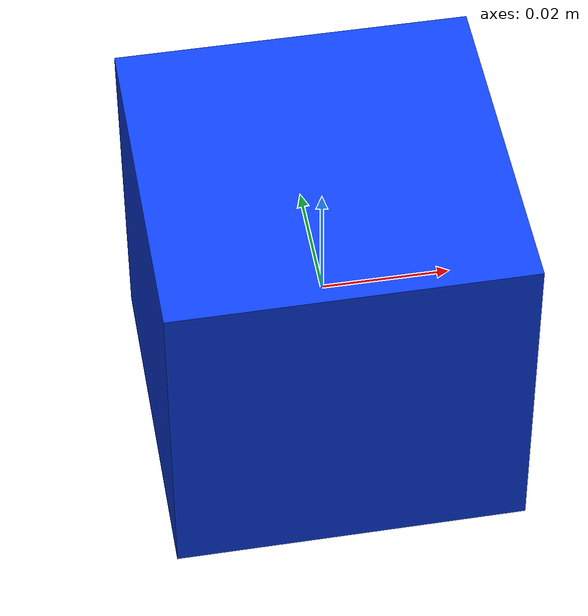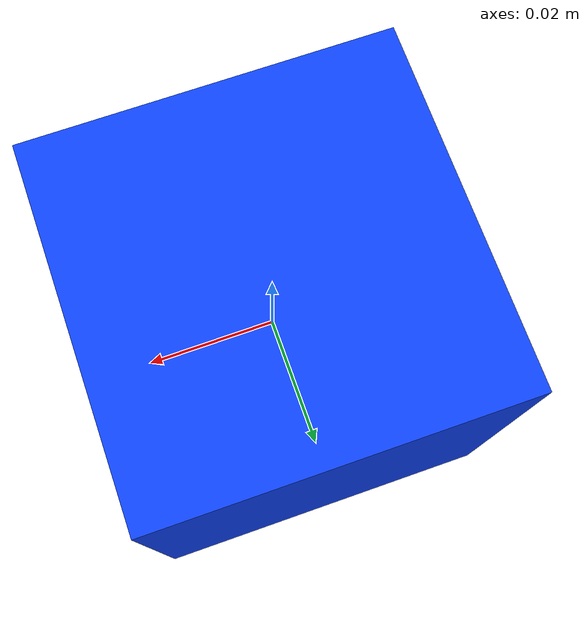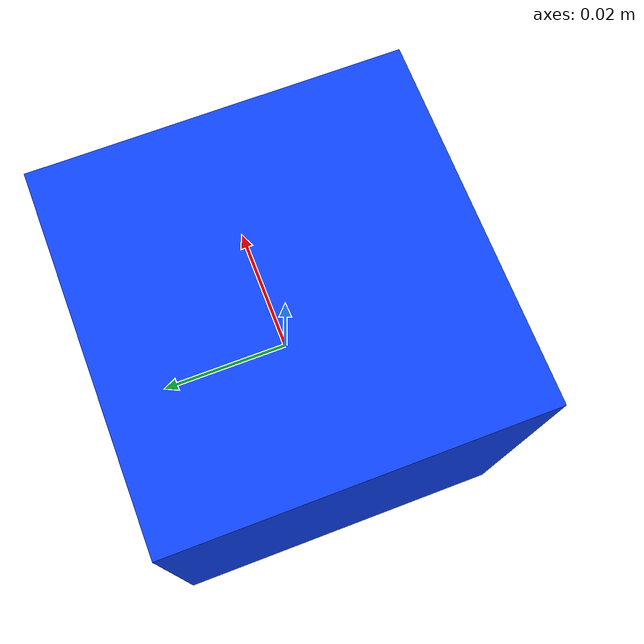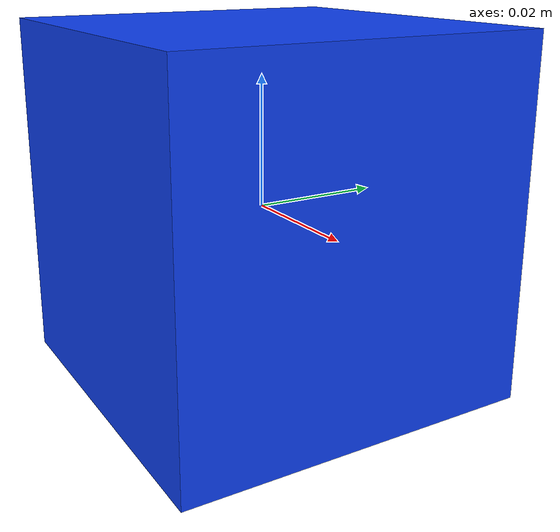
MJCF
<mujoco model="blue_cube">
  <worldbody>
    <body>
      <body name="object">
        <!-- Collision + visual: 5.5cm cube, smaller than the Panda gripper opening. -->
        <geom type="box" size="0.0275 0.0275 0.0275" pos="0 0 0" rgba="0.05 0.25 0.95 1" group="1" contype="0" conaffinity="0" />
        <geom type="box" size="0.0275 0.0275 0.0275" pos="0 0 0" rgba="0.05 0.25 0.95 1" group="0" density="500" friction="2.0 0.01 0.0001" solimp="0.99 0.99 0.001" solref="0.002 1" />
      </body>
      <site rgba="0 0 0 0" size="0.005" pos="0 0 -0.0275" name="bottom_site" group="0" />
      <site rgba="0 0 0 0" size="0.005" pos="0 0 0.0275" name="top_site" group="0" />
      <site rgba="0 0 0 0" size="0.005" pos="0.0275 0.0275 0.0275" name="horizontal_radius_site" group="0" />
    </body>
  </worldbody>
</mujoco>
